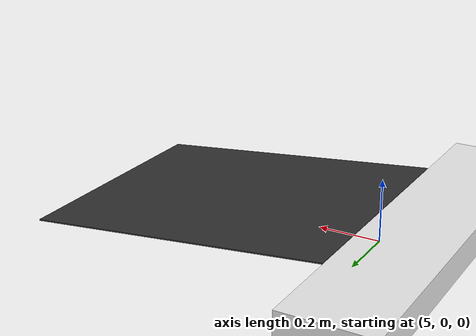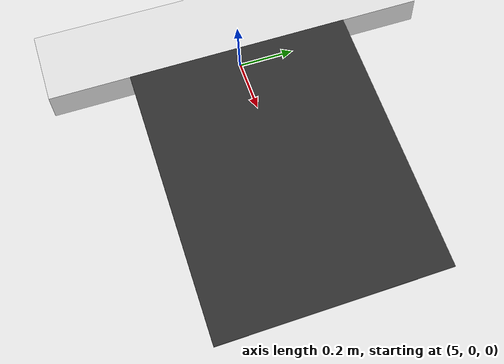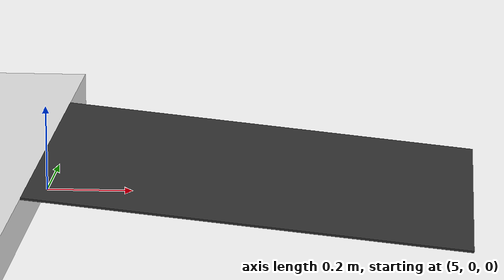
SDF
<?xml version='1.0'?>
<sdf version='1.4'>
  <model name="curb">
  	<static>true</static>
    <link name='body'>
        <pose>0 0 0.05 0 0 0</pose>

        <collision name='collision'>
          <geometry>
            <box>
              <size>10 10 0.1</size>
            </box>
          </geometry>
          <surface>
          <friction>
          	<ode>
          	  <mu>100</mu>
          	  <mu2>50</mu2>
          	</ode>
          </friction>
          <bounce/>
           	<contact>
           		<ode/>
          	</contact>
          </surface>
        </collision>

        <visual name='visual'>
          <geometry>
            <box>
              <size>10 10 0.1</size>
            </box>
          </geometry>
          <material>
            <script>
           		<uri>file://media/materials/scripts/gazebo.material</uri>
           		<name>Gazebo/White</name>
        	</script>
          </material>
        </visual>

        <visual name="ramp1">
          <pose>5.498 0.0 0.0 0 0.1 0</pose>
          <geometry>
            <box>
              <size>1.0 0.8 0.00462</size>
            </box>
          </geometry>
          <material>
            <ambient>0.2 0.2 0.2 1.0</ambient>
            <diffuse>0.2 0.2 0.2 1.0</diffuse>
          </material>
        </visual>

        <collision name="ramp1">
          <pose>5.498 0.0 0.0 0 0.1 0</pose>
          <geometry>
            <box>
              <size>1.0 0.8 0.00462</size>
            </box>
          </geometry>
        </collision>
      </link>
  </model>
</sdf>
